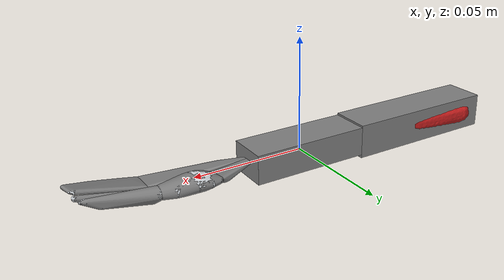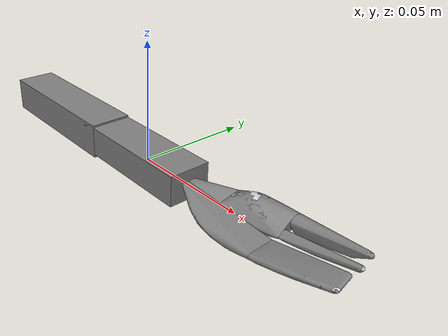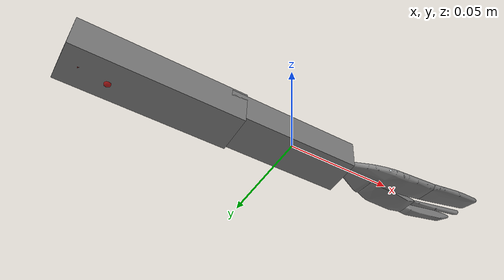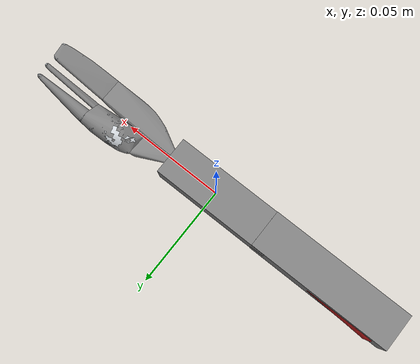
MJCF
<mujoco model="play2perfect_fork">
  <asset>
    <mesh name="handle_visual" file="meshes/e501e6f78c2a50498394.obj" />
    <mesh name="steel_visual" file="meshes/fe7259b58f60ca4e1ca0.obj" />
    <mesh name="hull0" file="meshes/c3e37c20dad20eab7126.obj" />
    <mesh name="hull1" file="meshes/8ada019eb226703de974.obj" />
    <mesh name="hull2" file="meshes/dbcf56be3d131657267a.obj" />
    <mesh name="hull3" file="meshes/a134b6435da660c6489e.obj" />
    <mesh name="hull4" file="meshes/9bff83237e65f72e5120.obj" />
    <mesh name="hull5" file="meshes/613ed081c791222dad9e.obj" />
    <mesh name="hull6" file="meshes/aca9e123998dfd173ef1.obj" />
    <mesh name="hull7" file="meshes/37d2ec245d188b00a512.obj" />
    <mesh name="hull8" file="meshes/e17cf88f6f3446108258.obj" />
  </asset>
  <worldbody>
    <body>
      <body name="object">
        <inertial mass="0.055" pos="-0.03391 0.000766 0.000337"
          fullinertia="1.863806e-06 1.316788e-04 1.324597e-04 -1.330871e-07 -1.773305e-06 -1.041935e-07" />
        <geom name="handle_collision" type="box" pos="-0.063 0 0" size="0.036 0.0093 0.0077"
          group="0" density="0" condim="6" friction="4.0 0.08 0.02" />
        <geom name="neck_collision" type="box" pos="-0.004 0 0.00035" size="0.030 0.0093 0.0065"
          group="0" density="0" condim="6" friction="4.0 0.08 0.02" />
        <geom name="hull1" type="mesh" mesh="hull1" group="0" density="0" friction="0.8 0.005 0.0001" />
        <geom name="hull2" type="mesh" mesh="hull2" group="0" density="0" friction="0.8 0.005 0.0001" />
        <geom name="hull5" type="mesh" mesh="hull5" group="0" density="0" friction="0.8 0.005 0.0001" />
        <geom name="hull6" type="mesh" mesh="hull6" group="0" density="0" friction="0.8 0.005 0.0001" />
        <geom name="hull7" type="mesh" mesh="hull7" group="0" density="0" friction="0.8 0.005 0.0001" />
        <geom name="hull8" type="mesh" mesh="hull8" group="0" density="0" friction="0.8 0.005 0.0001" />
        <geom name="handle_visual" type="mesh" mesh="handle_visual" group="1" contype="0" conaffinity="0" mass="1e-8" rgba="0.78 0.12 0.12 1" />
        <geom name="steel_visual" type="mesh" mesh="steel_visual" group="1" contype="0" conaffinity="0" mass="1e-8" rgba="0.83 0.85 0.87 1" />
        <site name="tip_site" pos="0.098777 0 0" size="0.002" rgba="1 0 0 0" />
      </body>
      <site name="bottom_site" pos="0 0 -0.014" size="0.002" rgba="0 0 0 0" />
      <site name="top_site" pos="0 0 0.014" size="0.002" rgba="0 0 0 0" />
      <site name="horizontal_radius_site" pos="0.10 0.014 0" size="0.002" rgba="0 0 0 0" />
    </body>
  </worldbody>
</mujoco>
